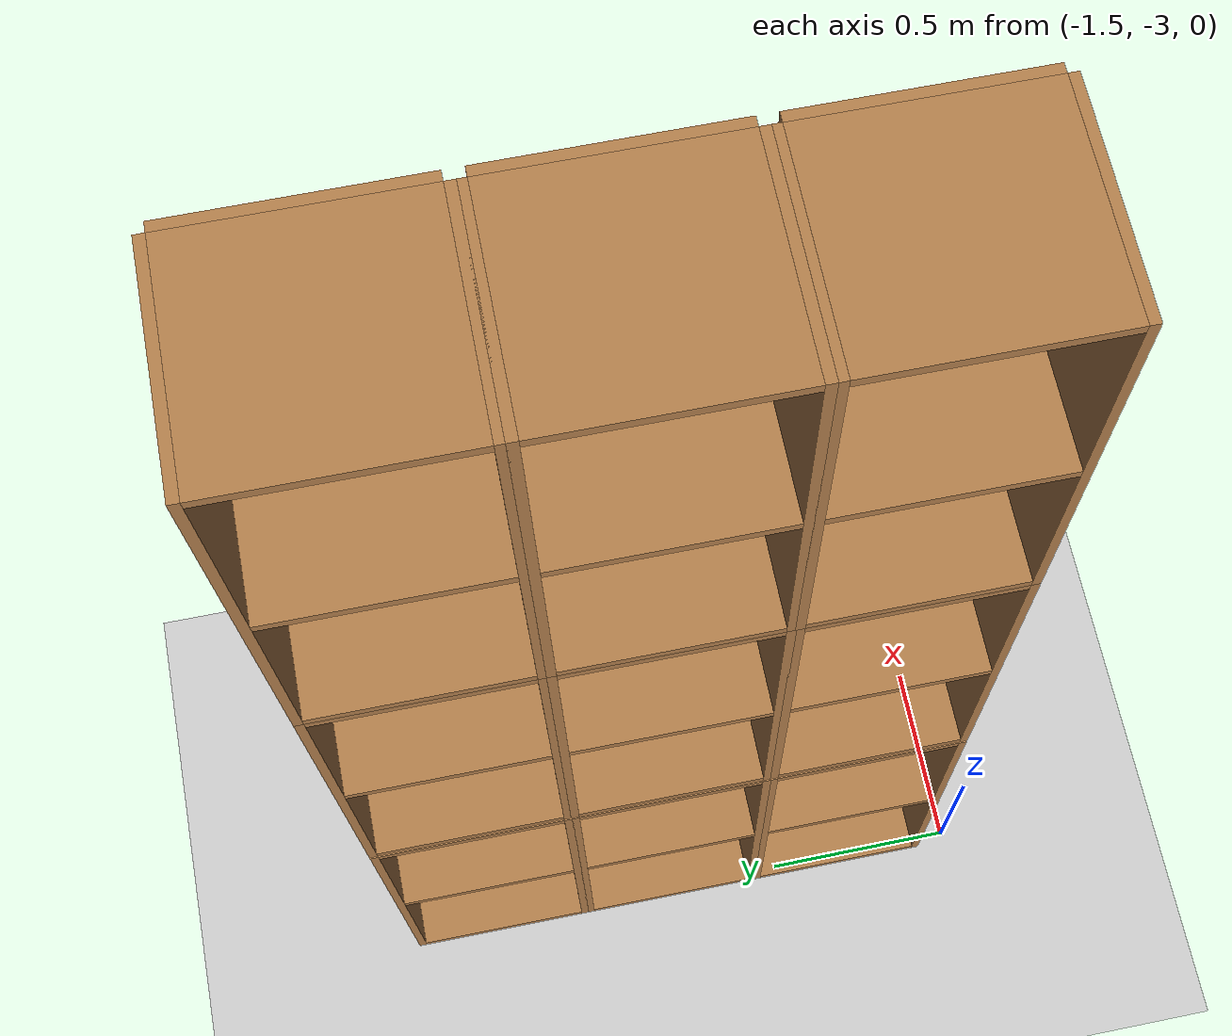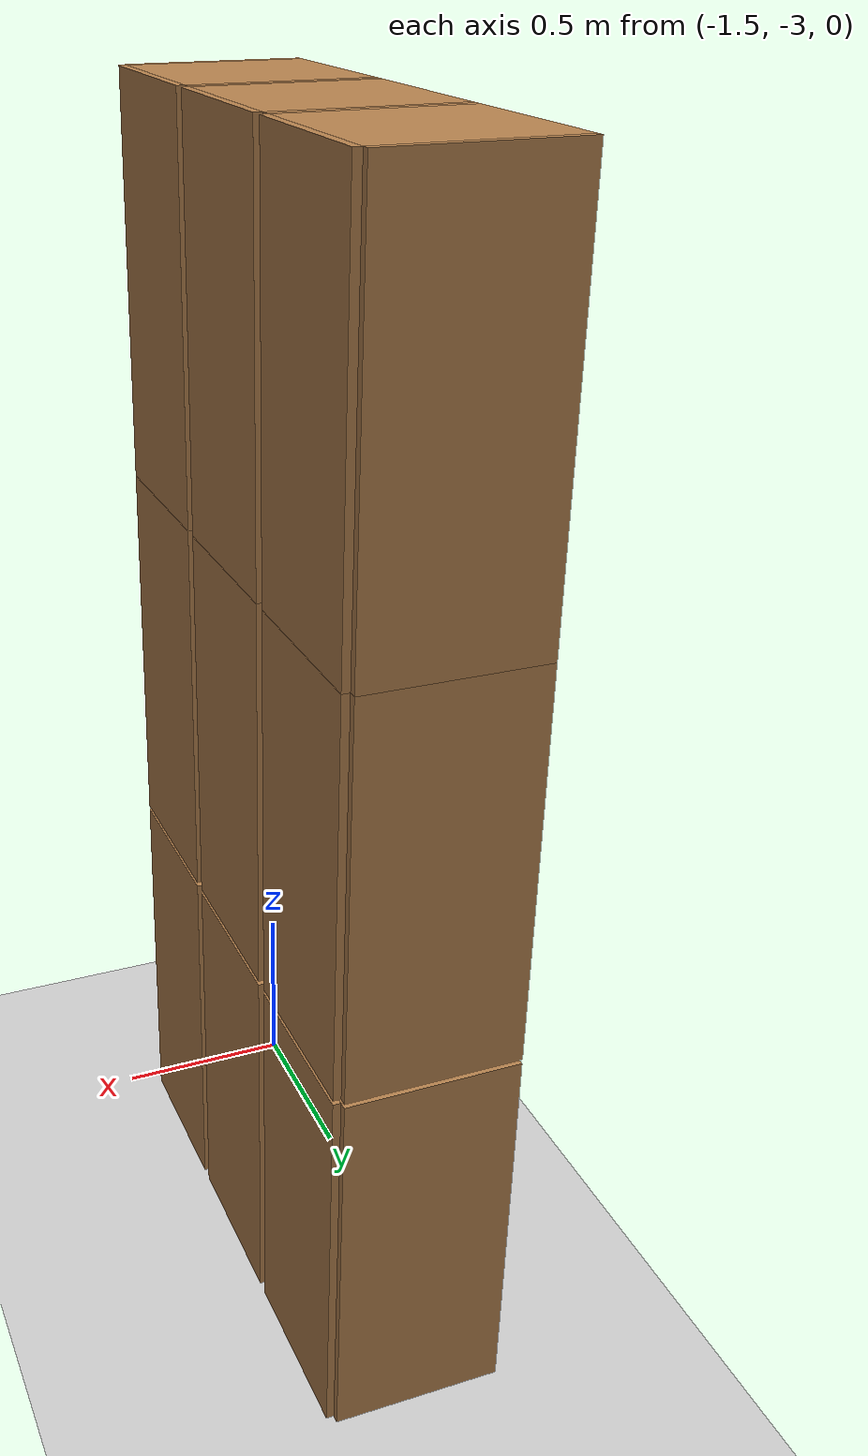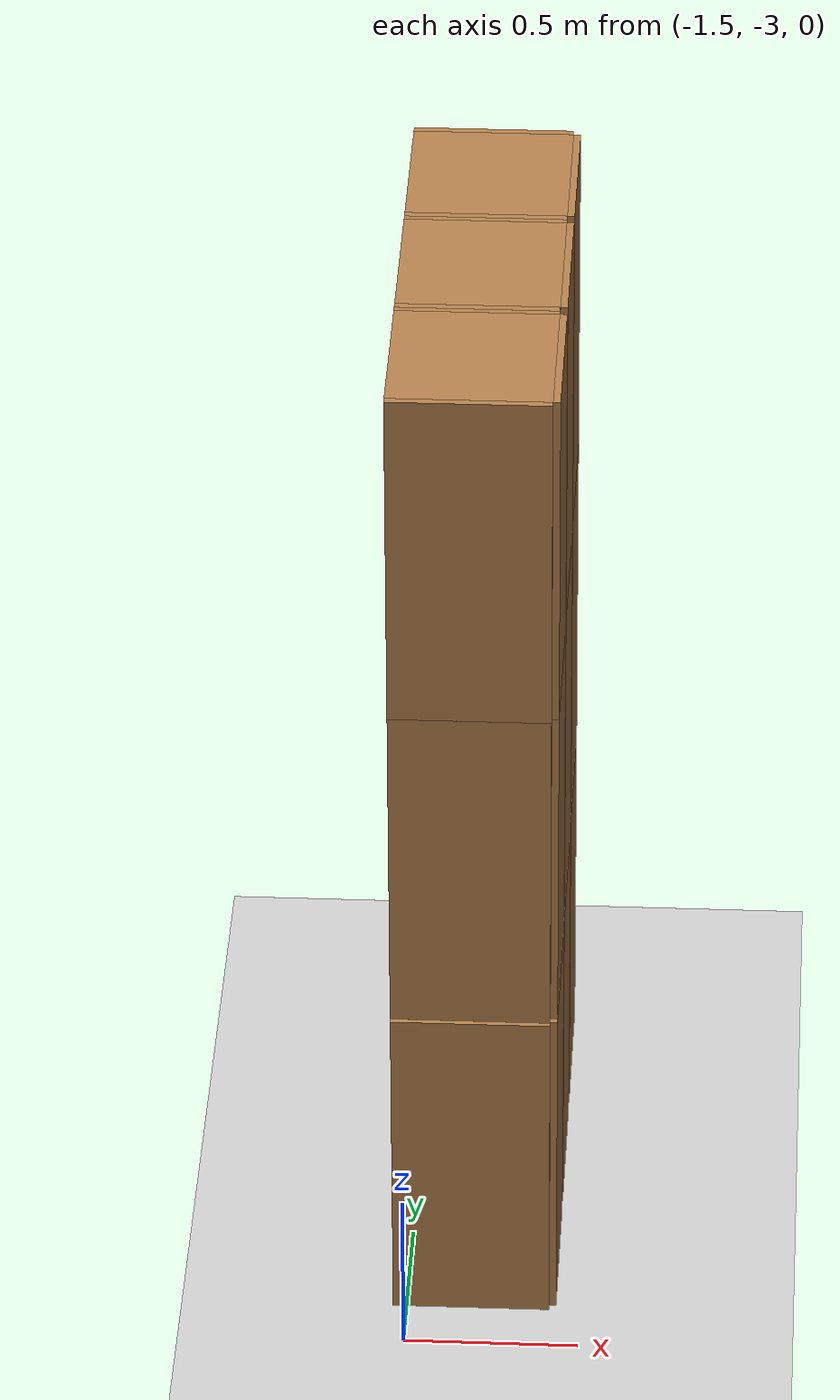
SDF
<sdf version="1.6">
 <world name="default">
  <model name="ground_plane">
   <static>1</static>
   <link name="link">
    <collision name="collision">
     <geometry><plane><normal>0 0 1</normal><size>100 100</size></plane></geometry>
     <surface>
      <contact><collide_bitmask>65535</collide_bitmask></contact>
      <friction><ode><mu>100</mu><mu2>50</mu2></ode></friction>
     </surface>
    </collision>
    <visual name="visual">
     <cast_shadows>0</cast_shadows>
     <geometry><plane><normal>0 0 1</normal><size>100 100</size></plane></geometry>
     <material>
      <script><uri>file://media/materials/scripts/gazebo.material</uri><name>Gazebo/Grey</name></script>
     </material>
    </visual>
   </link>
  </model>
  <model name="Locker18_clone_4_clone_2_clone_2_clone_2_clone">
   <model name="Locker18">
    <model name="Locker3">
     <model name="cabinet">
      <static>1</static>
      <link name="cabinet_bottom_plate">
       <inertial>
        <pose>0 0 -1 0 -0 0</pose>
        <inertia><ixx>2.05</ixx><ixy>0</ixy><ixz>0</ixz><iyy>2.05</iyy><iyz>0</iyz><izz>2.05</izz></inertia>
        <mass>25</mass>
       </inertial>
       <collision name="cabinet_bottom_plate_geom">
        <pose>0 0 0.01 0 -0 0</pose>
        <geometry><box><size>0.45 0.45 0.02</size></box></geometry>
       </collision>
       <visual name="cabinet_bottom_plate_geom_visual">
        <pose>0 0 0.01 0 -0 0</pose>
        <geometry><box><size>0.45 0.45 0.02</size></box></geometry>
        <material>
         <script><uri>file://media/materials/scripts/gazebo.material</uri><name>Gazebo/Wood</name></script>
        </material>
       </visual>
       <collision name="cabinet_bottom_plate_geom_cabinet_back_plate">
        <pose>0.235 0 0.51 0 -0 0</pose>
        <geometry><box><size>0.02 0.45 1.02</size></box></geometry>
       </collision>
       <visual name="cabinet_bottom_plate_geom_cabinet_back_plate_visual">
        <pose>0.235 0 0.51 0 -0 0</pose>
        <geometry><box><size>0.02 0.45 1.02</size></box></geometry>
        <material>
         <script><uri>file://media/materials/scripts/gazebo.material</uri><name>Gazebo/Wood</name></script>
        </material>
       </visual>
       <collision name="cabinet_bottom_plate_geom_cabinet_left_plate">
        <pose>0 0.235 0.51 0 -0 0</pose>
        <geometry><box><size>0.45 0.02 1.02</size></box></geometry>
       </collision>
       <visual name="cabinet_bottom_plate_geom_cabinet_left_plate_visual">
        <pose>0 0.235 0.51 0 -0 0</pose>
        <geometry><box><size>0.45 0.02 1.02</size></box></geometry>
        <material>
         <script><uri>file://media/materials/scripts/gazebo.material</uri><name>Gazebo/Wood</name></script>
        </material>
       </visual>
       <collision name="cabinet_bottom_plate_geom_cabinet_middle_plate">
        <pose>0 0 0.51 0 -0 0</pose>
        <geometry><box><size>0.45 0.45 0.02</size></box></geometry>
       </collision>
       <visual name="cabinet_bottom_plate_geom_cabinet_middle_plate_visual">
        <pose>0 0 0.51 0 -0 0</pose>
        <geometry><box><size>0.45 0.45 0.02</size></box></geometry>
        <material>
         <script><uri>file://media/materials/scripts/gazebo.material</uri><name>Gazebo/Wood</name></script>
        </material>
       </visual>
       <collision name="cabinet_bottom_plate_geom_cabinet_right_plate">
        <pose>0 -0.235 0.51 0 -0 0</pose>
        <geometry><box><size>0.45 0.02 1.02</size></box></geometry>
       </collision>
       <visual name="cabinet_bottom_plate_geom_cabinet_right_plate_visual">
        <pose>0 -0.235 0.51 0 -0 0</pose>
        <geometry><box><size>0.45 0.02 1.02</size></box></geometry>
        <material>
         <script><uri>file://media/materials/scripts/gazebo.material</uri><name>Gazebo/Wood</name></script>
        </material>
       </visual>
       <collision name="cabinet_bottom_plate_geom_cabinet_top_plate">
        <pose>0 0 1.01 0 -0 0</pose>
        <geometry><box><size>0.45 0.45 0.02</size></box></geometry>
       </collision>
       <visual name="cabinet_bottom_plate_geom_cabinet_top_plate_visual">
        <pose>0 0 1.01 0 -0 0</pose>
        <geometry><box><size>0.45 0.45 0.02</size></box></geometry>
        <material>
         <script><uri>file://media/materials/scripts/gazebo.material</uri><name>Gazebo/Wood</name></script>
        </material>
       </visual>
      </link>
      <pose>-0.676968 1.45758 0 0 -0 0</pose>
     </model>
     <model name="cabinet_clone">
      <static>1</static>
      <link name="cabinet_bottom_plate">
       <inertial>
        <pose>0 0 -1 0 -0 0</pose>
        <inertia><ixx>2.05</ixx><ixy>0</ixy><ixz>0</ixz><iyy>2.05</iyy><iyz>0</iyz><izz>2.05</izz></inertia>
        <mass>25</mass>
       </inertial>
       <collision name="cabinet_bottom_plate_geom">
        <pose>0 0 0.01 0 -0 0</pose>
        <geometry><box><size>0.45 0.45 0.02</size></box></geometry>
       </collision>
       <visual name="cabinet_bottom_plate_geom_visual">
        <pose>0 0 0.01 0 -0 0</pose>
        <geometry><box><size>0.45 0.45 0.02</size></box></geometry>
        <material>
         <script><uri>file://media/materials/scripts/gazebo.material</uri><name>Gazebo/Wood</name></script>
        </material>
       </visual>
       <collision name="cabinet_bottom_plate_geom_cabinet_back_plate">
        <pose>0.235 0 0.51 0 -0 0</pose>
        <geometry><box><size>0.02 0.45 1.02</size></box></geometry>
       </collision>
       <visual name="cabinet_bottom_plate_geom_cabinet_back_plate_visual">
        <pose>0.235 0 0.51 0 -0 0</pose>
        <geometry><box><size>0.02 0.45 1.02</size></box></geometry>
        <material>
         <script><uri>file://media/materials/scripts/gazebo.material</uri><name>Gazebo/Wood</name></script>
        </material>
       </visual>
       <collision name="cabinet_bottom_plate_geom_cabinet_left_plate">
        <pose>0 0.235 0.51 0 -0 0</pose>
        <geometry><box><size>0.45 0.02 1.02</size></box></geometry>
       </collision>
       <visual name="cabinet_bottom_plate_geom_cabinet_left_plate_visual">
        <pose>0 0.235 0.51 0 -0 0</pose>
        <geometry><box><size>0.45 0.02 1.02</size></box></geometry>
        <material>
         <script><uri>file://media/materials/scripts/gazebo.material</uri><name>Gazebo/Wood</name></script>
        </material>
       </visual>
       <collision name="cabinet_bottom_plate_geom_cabinet_middle_plate">
        <pose>0 0 0.51 0 -0 0</pose>
        <geometry><box><size>0.45 0.45 0.02</size></box></geometry>
       </collision>
       <visual name="cabinet_bottom_plate_geom_cabinet_middle_plate_visual">
        <pose>0 0 0.51 0 -0 0</pose>
        <geometry><box><size>0.45 0.45 0.02</size></box></geometry>
        <material>
         <script><uri>file://media/materials/scripts/gazebo.material</uri><name>Gazebo/Wood</name></script>
        </material>
       </visual>
       <collision name="cabinet_bottom_plate_geom_cabinet_right_plate">
        <pose>0 -0.235 0.51 0 -0 0</pose>
        <geometry><box><size>0.45 0.02 1.02</size></box></geometry>
       </collision>
       <visual name="cabinet_bottom_plate_geom_cabinet_right_plate_visual">
        <pose>0 -0.235 0.51 0 -0 0</pose>
        <geometry><box><size>0.45 0.02 1.02</size></box></geometry>
        <material>
         <script><uri>file://media/materials/scripts/gazebo.material</uri><name>Gazebo/Wood</name></script>
        </material>
       </visual>
       <collision name="cabinet_bottom_plate_geom_cabinet_top_plate">
        <pose>0 0 1.01 0 -0 0</pose>
        <geometry><box><size>0.45 0.45 0.02</size></box></geometry>
       </collision>
       <visual name="cabinet_bottom_plate_geom_cabinet_top_plate_visual">
        <pose>0 0 1.01 0 -0 0</pose>
        <geometry><box><size>0.45 0.45 0.02</size></box></geometry>
        <material>
         <script><uri>file://media/materials/scripts/gazebo.material</uri><name>Gazebo/Wood</name></script>
        </material>
       </visual>
      </link>
      <pose>-0.676968 0.970971 0 0 -0 0</pose>
     </model>
     <model name="cabinet_clone_0">
      <static>1</static>
      <link name="cabinet_bottom_plate">
       <inertial>
        <pose>0 0 -1 0 -0 0</pose>
        <inertia><ixx>2.05</ixx><ixy>0</ixy><ixz>0</ixz><iyy>2.05</iyy><iyz>0</iyz><izz>2.05</izz></inertia>
        <mass>25</mass>
       </inertial>
       <collision name="cabinet_bottom_plate_geom">
        <pose>0 0 0.01 0 -0 0</pose>
        <geometry><box><size>0.45 0.45 0.02</size></box></geometry>
       </collision>
       <visual name="cabinet_bottom_plate_geom_visual">
        <pose>0 0 0.01 0 -0 0</pose>
        <geometry><box><size>0.45 0.45 0.02</size></box></geometry>
        <material>
         <script><uri>file://media/materials/scripts/gazebo.material</uri><name>Gazebo/Wood</name></script>
        </material>
       </visual>
       <collision name="cabinet_bottom_plate_geom_cabinet_back_plate">
        <pose>0.235 0 0.51 0 -0 0</pose>
        <geometry><box><size>0.02 0.45 1.02</size></box></geometry>
       </collision>
       <visual name="cabinet_bottom_plate_geom_cabinet_back_plate_visual">
        <pose>0.235 0 0.51 0 -0 0</pose>
        <geometry><box><size>0.02 0.45 1.02</size></box></geometry>
        <material>
         <script><uri>file://media/materials/scripts/gazebo.material</uri><name>Gazebo/Wood</name></script>
        </material>
       </visual>
       <collision name="cabinet_bottom_plate_geom_cabinet_left_plate">
        <pose>0 0.235 0.51 0 -0 0</pose>
        <geometry><box><size>0.45 0.02 1.02</size></box></geometry>
       </collision>
       <visual name="cabinet_bottom_plate_geom_cabinet_left_plate_visual">
        <pose>0 0.235 0.51 0 -0 0</pose>
        <geometry><box><size>0.45 0.02 1.02</size></box></geometry>
        <material>
         <script><uri>file://media/materials/scripts/gazebo.material</uri><name>Gazebo/Wood</name></script>
        </material>
       </visual>
       <collision name="cabinet_bottom_plate_geom_cabinet_middle_plate">
        <pose>0 0 0.51 0 -0 0</pose>
        <geometry><box><size>0.45 0.45 0.02</size></box></geometry>
       </collision>
       <visual name="cabinet_bottom_plate_geom_cabinet_middle_plate_visual">
        <pose>0 0 0.51 0 -0 0</pose>
        <geometry><box><size>0.45 0.45 0.02</size></box></geometry>
        <material>
         <script><uri>file://media/materials/scripts/gazebo.material</uri><name>Gazebo/Wood</name></script>
        </material>
       </visual>
       <collision name="cabinet_bottom_plate_geom_cabinet_right_plate">
        <pose>0 -0.235 0.51 0 -0 0</pose>
        <geometry><box><size>0.45 0.02 1.02</size></box></geometry>
       </collision>
       <visual name="cabinet_bottom_plate_geom_cabinet_right_plate_visual">
        <pose>0 -0.235 0.51 0 -0 0</pose>
        <geometry><box><size>0.45 0.02 1.02</size></box></geometry>
        <material>
         <script><uri>file://media/materials/scripts/gazebo.material</uri><name>Gazebo/Wood</name></script>
        </material>
       </visual>
       <collision name="cabinet_bottom_plate_geom_cabinet_top_plate">
        <pose>0 0 1.01 0 -0 0</pose>
        <geometry><box><size>0.45 0.45 0.02</size></box></geometry>
       </collision>
       <visual name="cabinet_bottom_plate_geom_cabinet_top_plate_visual">
        <pose>0 0 1.01 0 -0 0</pose>
        <geometry><box><size>0.45 0.45 0.02</size></box></geometry>
        <material>
         <script><uri>file://media/materials/scripts/gazebo.material</uri><name>Gazebo/Wood</name></script>
        </material>
       </visual>
      </link>
      <pose>-0.676968 0.48391 0 0 -0 0</pose>
     </model>
     <static>0</static>
     <pose>0 3e-06 -1.02763 0 -0 0</pose>
    </model>
    <model name="Locker3_clone">
     <model name="cabinet">
      <static>1</static>
      <link name="cabinet_bottom_plate">
       <inertial>
        <pose>0 0 -1 0 -0 0</pose>
        <inertia><ixx>2.05</ixx><ixy>0</ixy><ixz>0</ixz><iyy>2.05</iyy><iyz>0</iyz><izz>2.05</izz></inertia>
        <mass>25</mass>
       </inertial>
       <collision name="cabinet_bottom_plate_geom">
        <pose>0 0 0.01 0 -0 0</pose>
        <geometry><box><size>0.45 0.45 0.02</size></box></geometry>
       </collision>
       <visual name="cabinet_bottom_plate_geom_visual">
        <pose>0 0 0.01 0 -0 0</pose>
        <geometry><box><size>0.45 0.45 0.02</size></box></geometry>
        <material>
         <script><uri>file://media/materials/scripts/gazebo.material</uri><name>Gazebo/Wood</name></script>
        </material>
       </visual>
       <collision name="cabinet_bottom_plate_geom_cabinet_back_plate">
        <pose>0.235 0 0.51 0 -0 0</pose>
        <geometry><box><size>0.02 0.45 1.02</size></box></geometry>
       </collision>
       <visual name="cabinet_bottom_plate_geom_cabinet_back_plate_visual">
        <pose>0.235 0 0.51 0 -0 0</pose>
        <geometry><box><size>0.02 0.45 1.02</size></box></geometry>
        <material>
         <script><uri>file://media/materials/scripts/gazebo.material</uri><name>Gazebo/Wood</name></script>
        </material>
       </visual>
       <collision name="cabinet_bottom_plate_geom_cabinet_left_plate">
        <pose>0 0.235 0.51 0 -0 0</pose>
        <geometry><box><size>0.45 0.02 1.02</size></box></geometry>
       </collision>
       <visual name="cabinet_bottom_plate_geom_cabinet_left_plate_visual">
        <pose>0 0.235 0.51 0 -0 0</pose>
        <geometry><box><size>0.45 0.02 1.02</size></box></geometry>
        <material>
         <script><uri>file://media/materials/scripts/gazebo.material</uri><name>Gazebo/Wood</name></script>
        </material>
       </visual>
       <collision name="cabinet_bottom_plate_geom_cabinet_middle_plate">
        <pose>0 0 0.51 0 -0 0</pose>
        <geometry><box><size>0.45 0.45 0.02</size></box></geometry>
       </collision>
       <visual name="cabinet_bottom_plate_geom_cabinet_middle_plate_visual">
        <pose>0 0 0.51 0 -0 0</pose>
        <geometry><box><size>0.45 0.45 0.02</size></box></geometry>
        <material>
         <script><uri>file://media/materials/scripts/gazebo.material</uri><name>Gazebo/Wood</name></script>
        </material>
       </visual>
       <collision name="cabinet_bottom_plate_geom_cabinet_right_plate">
        <pose>0 -0.235 0.51 0 -0 0</pose>
        <geometry><box><size>0.45 0.02 1.02</size></box></geometry>
       </collision>
       <visual name="cabinet_bottom_plate_geom_cabinet_right_plate_visual">
        <pose>0 -0.235 0.51 0 -0 0</pose>
        <geometry><box><size>0.45 0.02 1.02</size></box></geometry>
        <material>
         <script><uri>file://media/materials/scripts/gazebo.material</uri><name>Gazebo/Wood</name></script>
        </material>
       </visual>
       <collision name="cabinet_bottom_plate_geom_cabinet_top_plate">
        <pose>0 0 1.01 0 -0 0</pose>
        <geometry><box><size>0.45 0.45 0.02</size></box></geometry>
       </collision>
       <visual name="cabinet_bottom_plate_geom_cabinet_top_plate_visual">
        <pose>0 0 1.01 0 -0 0</pose>
        <geometry><box><size>0.45 0.45 0.02</size></box></geometry>
        <material>
         <script><uri>file://media/materials/scripts/gazebo.material</uri><name>Gazebo/Wood</name></script>
        </material>
       </visual>
      </link>
      <pose>-0.676968 1.45758 0 0 -0 0</pose>
     </model>
     <model name="cabinet_clone">
      <static>1</static>
      <link name="cabinet_bottom_plate">
       <inertial>
        <pose>0 0 -1 0 -0 0</pose>
        <inertia><ixx>2.05</ixx><ixy>0</ixy><ixz>0</ixz><iyy>2.05</iyy><iyz>0</iyz><izz>2.05</izz></inertia>
        <mass>25</mass>
       </inertial>
       <collision name="cabinet_bottom_plate_geom">
        <pose>0 0 0.01 0 -0 0</pose>
        <geometry><box><size>0.45 0.45 0.02</size></box></geometry>
       </collision>
       <visual name="cabinet_bottom_plate_geom_visual">
        <pose>0 0 0.01 0 -0 0</pose>
        <geometry><box><size>0.45 0.45 0.02</size></box></geometry>
        <material>
         <script><uri>file://media/materials/scripts/gazebo.material</uri><name>Gazebo/Wood</name></script>
        </material>
       </visual>
       <collision name="cabinet_bottom_plate_geom_cabinet_back_plate">
        <pose>0.235 0 0.51 0 -0 0</pose>
        <geometry><box><size>0.02 0.45 1.02</size></box></geometry>
       </collision>
       <visual name="cabinet_bottom_plate_geom_cabinet_back_plate_visual">
        <pose>0.235 0 0.51 0 -0 0</pose>
        <geometry><box><size>0.02 0.45 1.02</size></box></geometry>
        <material>
         <script><uri>file://media/materials/scripts/gazebo.material</uri><name>Gazebo/Wood</name></script>
        </material>
       </visual>
       <collision name="cabinet_bottom_plate_geom_cabinet_left_plate">
        <pose>0 0.235 0.51 0 -0 0</pose>
        <geometry><box><size>0.45 0.02 1.02</size></box></geometry>
       </collision>
       <visual name="cabinet_bottom_plate_geom_cabinet_left_plate_visual">
        <pose>0 0.235 0.51 0 -0 0</pose>
        <geometry><box><size>0.45 0.02 1.02</size></box></geometry>
        <material>
         <script><uri>file://media/materials/scripts/gazebo.material</uri><name>Gazebo/Wood</name></script>
        </material>
       </visual>
       <collision name="cabinet_bottom_plate_geom_cabinet_middle_plate">
        <pose>0 0 0.51 0 -0 0</pose>
        <geometry><box><size>0.45 0.45 0.02</size></box></geometry>
       </collision>
       <visual name="cabinet_bottom_plate_geom_cabinet_middle_plate_visual">
        <pose>0 0 0.51 0 -0 0</pose>
        <geometry><box><size>0.45 0.45 0.02</size></box></geometry>
        <material>
         <script><uri>file://media/materials/scripts/gazebo.material</uri><name>Gazebo/Wood</name></script>
        </material>
       </visual>
       <collision name="cabinet_bottom_plate_geom_cabinet_right_plate">
        <pose>0 -0.235 0.51 0 -0 0</pose>
        <geometry><box><size>0.45 0.02 1.02</size></box></geometry>
       </collision>
       <visual name="cabinet_bottom_plate_geom_cabinet_right_plate_visual">
        <pose>0 -0.235 0.51 0 -0 0</pose>
        <geometry><box><size>0.45 0.02 1.02</size></box></geometry>
        <material>
         <script><uri>file://media/materials/scripts/gazebo.material</uri><name>Gazebo/Wood</name></script>
        </material>
       </visual>
       <collision name="cabinet_bottom_plate_geom_cabinet_top_plate">
        <pose>0 0 1.01 0 -0 0</pose>
        <geometry><box><size>0.45 0.45 0.02</size></box></geometry>
       </collision>
       <visual name="cabinet_bottom_plate_geom_cabinet_top_plate_visual">
        <pose>0 0 1.01 0 -0 0</pose>
        <geometry><box><size>0.45 0.45 0.02</size></box></geometry>
        <material>
         <script><uri>file://media/materials/scripts/gazebo.material</uri><name>Gazebo/Wood</name></script>
        </material>
       </visual>
      </link>
      <pose>-0.676968 0.970971 0 0 -0 0</pose>
     </model>
     <model name="cabinet_clone_0">
      <static>1</static>
      <link name="cabinet_bottom_plate">
       <inertial>
        <pose>0 0 -1 0 -0 0</pose>
        <inertia><ixx>2.05</ixx><ixy>0</ixy><ixz>0</ixz><iyy>2.05</iyy><iyz>0</iyz><izz>2.05</izz></inertia>
        <mass>25</mass>
       </inertial>
       <collision name="cabinet_bottom_plate_geom">
        <pose>0 0 0.01 0 -0 0</pose>
        <geometry><box><size>0.45 0.45 0.02</size></box></geometry>
       </collision>
       <visual name="cabinet_bottom_plate_geom_visual">
        <pose>0 0 0.01 0 -0 0</pose>
        <geometry><box><size>0.45 0.45 0.02</size></box></geometry>
        <material>
         <script><uri>file://media/materials/scripts/gazebo.material</uri><name>Gazebo/Wood</name></script>
        </material>
       </visual>
       <collision name="cabinet_bottom_plate_geom_cabinet_back_plate">
        <pose>0.235 0 0.51 0 -0 0</pose>
        <geometry><box><size>0.02 0.45 1.02</size></box></geometry>
       </collision>
       <visual name="cabinet_bottom_plate_geom_cabinet_back_plate_visual">
        <pose>0.235 0 0.51 0 -0 0</pose>
        <geometry><box><size>0.02 0.45 1.02</size></box></geometry>
        <material>
         <script><uri>file://media/materials/scripts/gazebo.material</uri><name>Gazebo/Wood</name></script>
        </material>
       </visual>
       <collision name="cabinet_bottom_plate_geom_cabinet_left_plate">
        <pose>0 0.235 0.51 0 -0 0</pose>
        <geometry><box><size>0.45 0.02 1.02</size></box></geometry>
       </collision>
       <visual name="cabinet_bottom_plate_geom_cabinet_left_plate_visual">
        <pose>0 0.235 0.51 0 -0 0</pose>
        <geometry><box><size>0.45 0.02 1.02</size></box></geometry>
        <material>
         <script><uri>file://media/materials/scripts/gazebo.material</uri><name>Gazebo/Wood</name></script>
        </material>
       </visual>
       <collision name="cabinet_bottom_plate_geom_cabinet_middle_plate">
        <pose>0 0 0.51 0 -0 0</pose>
        <geometry><box><size>0.45 0.45 0.02</size></box></geometry>
       </collision>
       <visual name="cabinet_bottom_plate_geom_cabinet_middle_plate_visual">
        <pose>0 0 0.51 0 -0 0</pose>
        <geometry><box><size>0.45 0.45 0.02</size></box></geometry>
        <material>
         <script><uri>file://media/materials/scripts/gazebo.material</uri><name>Gazebo/Wood</name></script>
        </material>
       </visual>
       <collision name="cabinet_bottom_plate_geom_cabinet_right_plate">
        <pose>0 -0.235 0.51 0 -0 0</pose>
        <geometry><box><size>0.45 0.02 1.02</size></box></geometry>
       </collision>
       <visual name="cabinet_bottom_plate_geom_cabinet_right_plate_visual">
        <pose>0 -0.235 0.51 0 -0 0</pose>
        <geometry><box><size>0.45 0.02 1.02</size></box></geometry>
        <material>
         <script><uri>file://media/materials/scripts/gazebo.material</uri><name>Gazebo/Wood</name></script>
        </material>
       </visual>
       <collision name="cabinet_bottom_plate_geom_cabinet_top_plate">
        <pose>0 0 1.01 0 -0 0</pose>
        <geometry><box><size>0.45 0.45 0.02</size></box></geometry>
       </collision>
       <visual name="cabinet_bottom_plate_geom_cabinet_top_plate_visual">
        <pose>0 0 1.01 0 -0 0</pose>
        <geometry><box><size>0.45 0.45 0.02</size></box></geometry>
        <material>
         <script><uri>file://media/materials/scripts/gazebo.material</uri><name>Gazebo/Wood</name></script>
        </material>
       </visual>
      </link>
      <pose>-0.676968 0.48391 0 0 -0 0</pose>
     </model>
     <static>0</static>
     <pose>0 3e-06 0.003717 0 -0 0</pose>
    </model>
    <model name="Locker3_clone_clone">
     <model name="cabinet">
      <static>1</static>
      <link name="cabinet_bottom_plate">
       <inertial>
        <pose>0 0 -1 0 -0 0</pose>
        <inertia><ixx>2.05</ixx><ixy>0</ixy><ixz>0</ixz><iyy>2.05</iyy><iyz>0</iyz><izz>2.05</izz></inertia>
        <mass>25</mass>
       </inertial>
       <collision name="cabinet_bottom_plate_geom">
        <pose>0 0 0.01 0 -0 0</pose>
        <geometry><box><size>0.45 0.45 0.02</size></box></geometry>
       </collision>
       <visual name="cabinet_bottom_plate_geom_visual">
        <pose>0 0 0.01 0 -0 0</pose>
        <geometry><box><size>0.45 0.45 0.02</size></box></geometry>
        <material>
         <script><uri>file://media/materials/scripts/gazebo.material</uri><name>Gazebo/Wood</name></script>
        </material>
       </visual>
       <collision name="cabinet_bottom_plate_geom_cabinet_back_plate">
        <pose>0.235 0 0.51 0 -0 0</pose>
        <geometry><box><size>0.02 0.45 1.02</size></box></geometry>
       </collision>
       <visual name="cabinet_bottom_plate_geom_cabinet_back_plate_visual">
        <pose>0.235 0 0.51 0 -0 0</pose>
        <geometry><box><size>0.02 0.45 1.02</size></box></geometry>
        <material>
         <script><uri>file://media/materials/scripts/gazebo.material</uri><name>Gazebo/Wood</name></script>
        </material>
       </visual>
       <collision name="cabinet_bottom_plate_geom_cabinet_left_plate">
        <pose>0 0.235 0.51 0 -0 0</pose>
        <geometry><box><size>0.45 0.02 1.02</size></box></geometry>
       </collision>
       <visual name="cabinet_bottom_plate_geom_cabinet_left_plate_visual">
        <pose>0 0.235 0.51 0 -0 0</pose>
        <geometry><box><size>0.45 0.02 1.02</size></box></geometry>
        <material>
         <script><uri>file://media/materials/scripts/gazebo.material</uri><name>Gazebo/Wood</name></script>
        </material>
       </visual>
       <collision name="cabinet_bottom_plate_geom_cabinet_middle_plate">
        <pose>0 0 0.51 0 -0 0</pose>
        <geometry><box><size>0.45 0.45 0.02</size></box></geometry>
       </collision>
       <visual name="cabinet_bottom_plate_geom_cabinet_middle_plate_visual">
        <pose>0 0 0.51 0 -0 0</pose>
        <geometry><box><size>0.45 0.45 0.02</size></box></geometry>
        <material>
         <script><uri>file://media/materials/scripts/gazebo.material</uri><name>Gazebo/Wood</name></script>
        </material>
       </visual>
       <collision name="cabinet_bottom_plate_geom_cabinet_right_plate">
        <pose>0 -0.235 0.51 0 -0 0</pose>
        <geometry><box><size>0.45 0.02 1.02</size></box></geometry>
       </collision>
       <visual name="cabinet_bottom_plate_geom_cabinet_right_plate_visual">
        <pose>0 -0.235 0.51 0 -0 0</pose>
        <geometry><box><size>0.45 0.02 1.02</size></box></geometry>
        <material>
         <script><uri>file://media/materials/scripts/gazebo.material</uri><name>Gazebo/Wood</name></script>
        </material>
       </visual>
       <collision name="cabinet_bottom_plate_geom_cabinet_top_plate">
        <pose>0 0 1.01 0 -0 0</pose>
        <geometry><box><size>0.45 0.45 0.02</size></box></geometry>
       </collision>
       <visual name="cabinet_bottom_plate_geom_cabinet_top_plate_visual">
        <pose>0 0 1.01 0 -0 0</pose>
        <geometry><box><size>0.45 0.45 0.02</size></box></geometry>
        <material>
         <script><uri>file://media/materials/scripts/gazebo.material</uri><name>Gazebo/Wood</name></script>
        </material>
       </visual>
      </link>
      <pose>-0.676968 1.45758 0 0 -0 0</pose>
     </model>
     <model name="cabinet_clone">
      <static>1</static>
      <link name="cabinet_bottom_plate">
       <inertial>
        <pose>0 0 -1 0 -0 0</pose>
        <inertia><ixx>2.05</ixx><ixy>0</ixy><ixz>0</ixz><iyy>2.05</iyy><iyz>0</iyz><izz>2.05</izz></inertia>
        <mass>25</mass>
       </inertial>
       <collision name="cabinet_bottom_plate_geom">
        <pose>0 0 0.01 0 -0 0</pose>
        <geometry><box><size>0.45 0.45 0.02</size></box></geometry>
       </collision>
       <visual name="cabinet_bottom_plate_geom_visual">
        <pose>0 0 0.01 0 -0 0</pose>
        <geometry><box><size>0.45 0.45 0.02</size></box></geometry>
        <material>
         <script><uri>file://media/materials/scripts/gazebo.material</uri><name>Gazebo/Wood</name></script>
        </material>
       </visual>
       <collision name="cabinet_bottom_plate_geom_cabinet_back_plate">
        <pose>0.235 0 0.51 0 -0 0</pose>
        <geometry><box><size>0.02 0.45 1.02</size></box></geometry>
       </collision>
       <visual name="cabinet_bottom_plate_geom_cabinet_back_plate_visual">
        <pose>0.235 0 0.51 0 -0 0</pose>
        <geometry><box><size>0.02 0.45 1.02</size></box></geometry>
        <material>
         <script><uri>file://media/materials/scripts/gazebo.material</uri><name>Gazebo/Wood</name></script>
        </material>
       </visual>
       <collision name="cabinet_bottom_plate_geom_cabinet_left_plate">
        <pose>0 0.235 0.51 0 -0 0</pose>
        <geometry><box><size>0.45 0.02 1.02</size></box></geometry>
       </collision>
       <visual name="cabinet_bottom_plate_geom_cabinet_left_plate_visual">
        <pose>0 0.235 0.51 0 -0 0</pose>
        <geometry><box><size>0.45 0.02 1.02</size></box></geometry>
        <material>
         <script><uri>file://media/materials/scripts/gazebo.material</uri><name>Gazebo/Wood</name></script>
        </material>
       </visual>
       <collision name="cabinet_bottom_plate_geom_cabinet_middle_plate">
        <pose>0 0 0.51 0 -0 0</pose>
        <geometry><box><size>0.45 0.45 0.02</size></box></geometry>
       </collision>
       <visual name="cabinet_bottom_plate_geom_cabinet_middle_plate_visual">
        <pose>0 0 0.51 0 -0 0</pose>
        <geometry><box><size>0.45 0.45 0.02</size></box></geometry>
        <material>
         <script><uri>file://media/materials/scripts/gazebo.material</uri><name>Gazebo/Wood</name></script>
        </material>
       </visual>
       <collision name="cabinet_bottom_plate_geom_cabinet_right_plate">
        <pose>0 -0.235 0.51 0 -0 0</pose>
        <geometry><box><size>0.45 0.02 1.02</size></box></geometry>
       </collision>
       <visual name="cabinet_bottom_plate_geom_cabinet_right_plate_visual">
        <pose>0 -0.235 0.51 0 -0 0</pose>
        <geometry><box><size>0.45 0.02 1.02</size></box></geometry>
        <material>
         <script><uri>file://media/materials/scripts/gazebo.material</uri><name>Gazebo/Wood</name></script>
        </material>
       </visual>
       <collision name="cabinet_bottom_plate_geom_cabinet_top_plate">
        <pose>0 0 1.01 0 -0 0</pose>
        <geometry><box><size>0.45 0.45 0.02</size></box></geometry>
       </collision>
       <visual name="cabinet_bottom_plate_geom_cabinet_top_plate_visual">
        <pose>0 0 1.01 0 -0 0</pose>
        <geometry><box><size>0.45 0.45 0.02</size></box></geometry>
        <material>
         <script><uri>file://media/materials/scripts/gazebo.material</uri><name>Gazebo/Wood</name></script>
        </material>
       </visual>
      </link>
      <pose>-0.676968 0.970971 0 0 -0 0</pose>
     </model>
     <model name="cabinet_clone_0">
      <static>1</static>
      <link name="cabinet_bottom_plate">
       <inertial>
        <pose>0 0 -1 0 -0 0</pose>
        <inertia><ixx>2.05</ixx><ixy>0</ixy><ixz>0</ixz><iyy>2.05</iyy><iyz>0</iyz><izz>2.05</izz></inertia>
        <mass>25</mass>
       </inertial>
       <collision name="cabinet_bottom_plate_geom">
        <pose>0 0 0.01 0 -0 0</pose>
        <geometry><box><size>0.45 0.45 0.02</size></box></geometry>
       </collision>
       <visual name="cabinet_bottom_plate_geom_visual">
        <pose>0 0 0.01 0 -0 0</pose>
        <geometry><box><size>0.45 0.45 0.02</size></box></geometry>
        <material>
         <script><uri>file://media/materials/scripts/gazebo.material</uri><name>Gazebo/Wood</name></script>
        </material>
       </visual>
       <collision name="cabinet_bottom_plate_geom_cabinet_back_plate">
        <pose>0.235 0 0.51 0 -0 0</pose>
        <geometry><box><size>0.02 0.45 1.02</size></box></geometry>
       </collision>
       <visual name="cabinet_bottom_plate_geom_cabinet_back_plate_visual">
        <pose>0.235 0 0.51 0 -0 0</pose>
        <geometry><box><size>0.02 0.45 1.02</size></box></geometry>
        <material>
         <script><uri>file://media/materials/scripts/gazebo.material</uri><name>Gazebo/Wood</name></script>
        </material>
       </visual>
       <collision name="cabinet_bottom_plate_geom_cabinet_left_plate">
        <pose>0 0.235 0.51 0 -0 0</pose>
        <geometry><box><size>0.45 0.02 1.02</size></box></geometry>
       </collision>
       <visual name="cabinet_bottom_plate_geom_cabinet_left_plate_visual">
        <pose>0 0.235 0.51 0 -0 0</pose>
        <geometry><box><size>0.45 0.02 1.02</size></box></geometry>
        <material>
         <script><uri>file://media/materials/scripts/gazebo.material</uri><name>Gazebo/Wood</name></script>
        </material>
       </visual>
       <collision name="cabinet_bottom_plate_geom_cabinet_middle_plate">
        <pose>0 0 0.51 0 -0 0</pose>
        <geometry><box><size>0.45 0.45 0.02</size></box></geometry>
       </collision>
       <visual name="cabinet_bottom_plate_geom_cabinet_middle_plate_visual">
        <pose>0 0 0.51 0 -0 0</pose>
        <geometry><box><size>0.45 0.45 0.02</size></box></geometry>
        <material>
         <script><uri>file://media/materials/scripts/gazebo.material</uri><name>Gazebo/Wood</name></script>
        </material>
       </visual>
       <collision name="cabinet_bottom_plate_geom_cabinet_right_plate">
        <pose>0 -0.235 0.51 0 -0 0</pose>
        <geometry><box><size>0.45 0.02 1.02</size></box></geometry>
       </collision>
       <visual name="cabinet_bottom_plate_geom_cabinet_right_plate_visual">
        <pose>0 -0.235 0.51 0 -0 0</pose>
        <geometry><box><size>0.45 0.02 1.02</size></box></geometry>
        <material>
         <script><uri>file://media/materials/scripts/gazebo.material</uri><name>Gazebo/Wood</name></script>
        </material>
       </visual>
       <collision name="cabinet_bottom_plate_geom_cabinet_top_plate">
        <pose>0 0 1.01 0 -0 0</pose>
        <geometry><box><size>0.45 0.45 0.02</size></box></geometry>
       </collision>
       <visual name="cabinet_bottom_plate_geom_cabinet_top_plate_visual">
        <pose>0 0 1.01 0 -0 0</pose>
        <geometry><box><size>0.45 0.45 0.02</size></box></geometry>
        <material>
         <script><uri>file://media/materials/scripts/gazebo.material</uri><name>Gazebo/Wood</name></script>
        </material>
       </visual>
      </link>
      <pose>-0.676968 0.48391 0 0 -0 0</pose>
     </model>
     <static>0</static>
     <pose>0 3e-06 1.02391 0 -0 0</pose>
    </model>
    <static>0</static>
    <pose>-0 4e-06 4e-06 0 -0 0</pose>
   </model>
   <static>0</static>
   <pose>-0.634698 -3.15189 1.08672 0 -0 0</pose>
  </model>
 </world>
</sdf>
